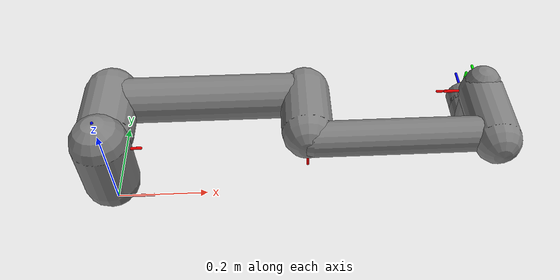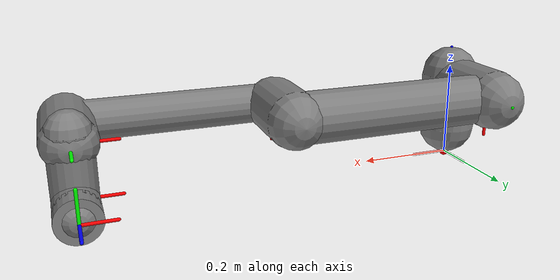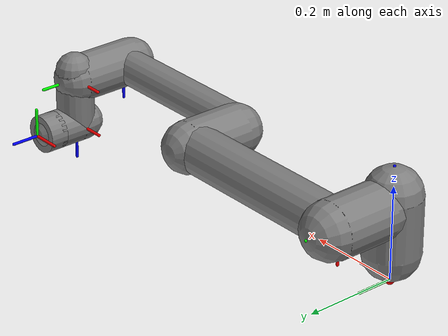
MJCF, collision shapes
<mujoco model="ur5e">
  <compiler angle="radian" meshdir="assets" autolimits="true"/>
  <option integrator="implicitfast"/>
  <default>
    <default class="ur5e">
      <material specular="0.5" shininess="0.25"/>
      <joint axis="0 1 0" range="-6.28319 6.28319" armature="0.1"/>
      <general gaintype="fixed" biastype="affine" ctrlrange="-6.2831 6.2831"
        gainprm="2000" biasprm="0 -2000 -400" forcerange="-150 150"/>
      <default class="size3">
        <default class="size3_limited">
          <joint range="-6.28319 6.28319"/>
          <general ctrlrange="-6.28319 6.28319"/>
        </default>
      </default>
      <default class="size1">
        <general gainprm="500" biasprm="0 -500 -100" forcerange="-28 28"/>
      </default>
      <default class="visual">
        <geom type="mesh" contype="0" conaffinity="0" group="2"/>
      </default>
      <default class="collision">
        <geom type="capsule" group="3"/>
        <default class="eef_collision">
          <geom type="cylinder"/>
        </default>
      </default>
      <site size="0.001" rgba="0.5 0.5 0.5 0.3" group="4"/>
    </default>
  </default>

  <asset>
    <material class="ur5e" name="black" rgba="0.033 0.033 0.033 1"/>
    <material class="ur5e" name="jointgray" rgba="0.278 0.278 0.278 1"/>
    <material class="ur5e" name="linkgray" rgba="0.72 0.72 0.72 1"/>
    <material class="ur5e" name="urblue" rgba="0.49 0.678 0.8 1"/>

    <mesh file="base_0.obj"/>
    <mesh file="base_1.obj"/>
    <mesh file="shoulder_0.obj"/>
    <mesh file="shoulder_1.obj"/>
    <mesh file="shoulder_2.obj"/>
    <mesh file="upperarm_0.obj"/>
    <mesh file="upperarm_1.obj"/>
    <mesh file="upperarm_2.obj"/>
    <mesh file="upperarm_3.obj"/>
    <mesh file="forearm_0.obj"/>
    <mesh file="forearm_1.obj"/>
    <mesh file="forearm_2.obj"/>
    <mesh file="forearm_3.obj"/>
    <mesh file="wrist1_0.obj"/>
    <mesh file="wrist1_1.obj"/>
    <mesh file="wrist1_2.obj"/>
    <mesh file="wrist2_0.obj"/>
    <mesh file="wrist2_1.obj"/>
    <mesh file="wrist2_2.obj"/>
    <mesh file="wrist3.obj"/>
  </asset>

  <worldbody>
    <light name="spotlight" mode="targetbodycom" target="wrist_2_link" pos="0 -1 2"/>

    <body name="base" pos="0 0 0.0" quat="1 0 0 0" childclass="ur5e">
      <inertial mass="4.0" pos="0 0 0" diaginertia="0.00443333156 0.00443333156 0.0072"/>
      <geom type="capsule" fromto="0 0 0 0.08 0 0" rgba="1 0 0 1" size="0.003" contype="0" conaffinity="0"/>
      <geom type="capsule" fromto="0 0 0 0 0.08 0" rgba="0 1 0 1" size="0.003" contype="0" conaffinity="0"/>
      <geom type="capsule" fromto="0 0 0 0 0 0.08" rgba="0 0 1 1" size="0.003" contype="0" conaffinity="0"/>
      <geom mesh="base_0" material="black" class="visual"/>
      <geom mesh="base_1" material="linkgray" class="visual"/>

      <!-- COM marker -->
      <geom name="base_com"
            type="sphere"
            pos="0.0 0.0 0.0"
            size="0.01"
            rgba="1 0 0 1"
            group="1"
            contype="0"
            conaffinity="0"/>

      <body name="shoulder_link" pos="0 0 0.163">
        <inertial mass="3.761" pos="0 0.00193 -0.02561" diaginertia="0.0067 0.0064 0.00666"/>
        <geom type="capsule" fromto="0 0 0 0.08 0 0" rgba="1 0 0 1" size="0.003" contype="0" conaffinity="0"/>
        <geom type="capsule" fromto="0 0 0 0 0.08 0" rgba="0 1 0 1" size="0.003" contype="0" conaffinity="0"/>
        <geom type="capsule" fromto="0 0 0 0 0 0.08" rgba="0 0 1 1" size="0.003" contype="0" conaffinity="0"/>
        <joint name="shoulder_pan_joint" class="size3" axis="0 0 1"/>
        <geom mesh="shoulder_0" material="urblue" class="visual"/>
        <geom mesh="shoulder_1" material="black" class="visual"/>
        <geom mesh="shoulder_2" material="jointgray" class="visual"/>
        <geom name="shoulder_collision" class="collision" size="0.06 0.06" pos="0 0 -0.04"/>

        <!-- COM marker -->
        <geom name="shoulder_link_com"
              type="sphere"
              pos="0.0 0.00193 -0.02561"
              size="0.01"
              rgba="1 0 0 1"
              group="1"
              contype="0"
              conaffinity="0"/>

        <body name="upper_arm_link" pos="0 0.138 0" quat="1 0 1 0">
          <inertial mass="8.058" pos="0.0 -0.01464 0.2125" diaginertia="0.0149 0.3564 0.3553"/>
          <geom type="capsule" fromto="0 0 0 0.08 0 0" rgba="1 0 0 1" size="0.003" contype="0" conaffinity="0"/>
          <geom type="capsule" fromto="0 0 0 0 0.08 0" rgba="0 1 0 1" size="0.003" contype="0" conaffinity="0"/>
          <geom type="capsule" fromto="0 0 0 0 0 0.08" rgba="0 0 1 1" size="0.003" contype="0" conaffinity="0"/>
          <joint name="shoulder_lift_joint" class="size3"/>
          <geom mesh="upperarm_0" material="linkgray" class="visual"/>
          <geom mesh="upperarm_1" material="black" class="visual"/>
          <geom mesh="upperarm_2" material="jointgray" class="visual"/>
          <geom mesh="upperarm_3" material="urblue" class="visual"/>
          <geom name="upper_arm_collision_outer" class="collision" pos="0 -0.04 0" quat="1 1 0 0" size="0.06 0.06"/>
          <geom name="upper_arm_collision_inner" class="collision" size="0.05 0.2" pos="0 0 0.2"/>

          <!-- COM marker -->
          <geom name="upper_arm_com"
                type="sphere"
                pos="0.0 -0.01464 0.2125"
                size="0.01"
                rgba="1 0 0 1"
                group="1"
                contype="0"
                conaffinity="0"/>

          <body name="forearm_link" pos="0 -0.131 0.425">
            <inertial mass="2.846" pos="0.0 0.0155 0.1922" diaginertia="0.0025 0.0551 0.0546"/>
            <geom type="capsule" fromto="0 0 0 0.08 0 0" rgba="1 0 0 1" size="0.003" contype="0" conaffinity="0"/>
            <geom type="capsule" fromto="0 0 0 0 0.08 0" rgba="0 1 0 1" size="0.003" contype="0" conaffinity="0"/>
            <geom type="capsule" fromto="0 0 0 0 0 0.08" rgba="0 0 1 1" size="0.003" contype="0" conaffinity="0"/>
            <joint name="elbow_joint" class="size3_limited"/>
            <geom mesh="forearm_0" material="urblue" class="visual"/>
            <geom mesh="forearm_1" material="linkgray" class="visual"/>
            <geom mesh="forearm_2" material="black" class="visual"/>
            <geom mesh="forearm_3" material="jointgray" class="visual"/>
            <geom name="forearm_collision_outer" class="collision" pos="0 0.08 0" quat="1 1 0 0" size="0.055 0.06"/>
            <geom name="forearm_collision_inner" class="collision" size="0.038 0.19" pos="0 0 0.2"/>

            <!-- COM marker -->
            <geom name="forearm_com"
                  type="sphere"
                  pos="0.0 0.0155 0.1922"
                  size="0.01"
                  rgba="1 0 0 1"
                  group="1"
                  contype="0"
                  conaffinity="0"/>

            <body name="wrist_1_link" pos="0 0 0.392" quat="1 0 1 0">
              <inertial mass="1.37" pos="0.0 0.11 0.03" diaginertia="0.0012 0.0012 0.0009"/>
              <geom type="capsule" fromto="0 0 0 0.08 0 0" rgba="1 0 0 1" size="0.003" contype="0" conaffinity="0"/>
              <geom type="capsule" fromto="0 0 0 0 0.08 0" rgba="0 1 0 1" size="0.003" contype="0" conaffinity="0"/>
              <geom type="capsule" fromto="0 0 0 0 0 0.08" rgba="0 0 1 1" size="0.003" contype="0" conaffinity="0"/>
              <joint name="wrist_1_joint" class="size1"/>
              <geom mesh="wrist1_0" material="black" class="visual"/>
              <geom mesh="wrist1_1" material="urblue" class="visual"/>
              <geom mesh="wrist1_2" material="jointgray" class="visual"/>
              <geom name="wrist_1_collision" class="collision" pos="0 0.05 0" quat="1 1 0 0" size="0.05 0.07"/>

              <!-- COM marker -->
              <geom name="wrist_1_com"
                    type="sphere"
                    pos="0.0 0.11 0.03"
                    size="0.01"
                    rgba="1 0 0 1"
                    group="1"
                    contype="0"
                    conaffinity="0"/>

              <body name="wrist_2_link" pos="0 0.127 0">
                <inertial mass="1.3" pos="0.0 0.02 0.09" diaginertia="0.0012 0.0012 0.0009"/>
                <geom type="capsule" fromto="0 0 0 0.08 0 0" rgba="1 0 0 1" size="0.003" contype="0" conaffinity="0"/>
                <geom type="capsule" fromto="0 0 0 0 0.08 0" rgba="0 1 0 1" size="0.003" contype="0" conaffinity="0"/>
                <geom type="capsule" fromto="0 0 0 0 0 0.08" rgba="0 0 1 1" size="0.003" contype="0" conaffinity="0"/>
                <joint name="wrist_2_joint" axis="0 0 1" class="size1"/>
                <geom mesh="wrist2_0" material="black" class="visual"/>
                <geom mesh="wrist2_1" material="urblue" class="visual"/>
                <geom mesh="wrist2_2" material="jointgray" class="visual"/>
                <geom name="wrist_2_collision_lower" class="collision" size="0.04 0.06" pos="0 0 0.04"/>
                <geom name="wrist_2_collision_upper" class="collision" pos="0 0.02 0.1" quat="1 1 0 0" size="0.04 0.04"/>

                <!-- COM marker -->
                <geom name="wrist_2_com"
                      type="sphere"
                      pos="0.0 0.02 0.09"
                      size="0.01"
                      rgba="1 0 0 1"
                      group="1"
                      contype="0"
                      conaffinity="0"/>

                <body name="wrist_3_link" pos="0 0 0.1">
                  <inertial mass="0.365" pos="0.0 0.07 0.0" quat="1 0 0 1" diaginertia="0.001 0.001 0.001"/>
                  <geom type="capsule" fromto="0 0 0 0.08 0 0" rgba="1 0 0 1" size="0.003" contype="0" conaffinity="0"/>
                  <geom type="capsule" fromto="0 0 0 0 0.08 0" rgba="0 1 0 1" size="0.003" contype="0" conaffinity="0"/>
                  <geom type="capsule" fromto="0 0 0 0 0 0.08" rgba="0 0 1 1" size="0.003" contype="0" conaffinity="0"/>
                  <joint name="wrist_3_joint" class="size1"/>
                  <geom material="linkgray" mesh="wrist3" class="visual"/>
                  <geom name="wrist_3_collision" class="eef_collision" pos="0 0.07 0" quat="1 1 0 0" size="0.04 0.02"/>

                  <!-- COM marker -->
                  <geom name="wrist_3_com"
                        type="sphere"
                        pos="0.0 0.07 0.0"
                        size="0.01"
                        rgba="1 0 0 1"
                        group="1"
                        contype="0"
                        conaffinity="0"/>

                  <site name="ee_site" pos="0 0.1 0" quat="0.7071 -0.7071 0 0"/>

                  <!-- Replace tool frames with Hande gripper -->
                  <body name="ee_frame_visual_only" pos="0 0.1 0" quat="0.7071 -0.7071 0 0">
                    <geom type="capsule" fromto="0 0 0 0.05 0 0" rgba="1 0 0 1" size="0.002"/>
                    <geom type="capsule" fromto="0 0 0 0 0.05 0" rgba="0 1 0 1" size="0.002"/>
                    <geom type="capsule" fromto="0 0 0 0 0 0.05" rgba="0 0 1 1" size="0.002"/>

                    <!-- 'Movable frame' inside the gripper fingers -->
                    <body name="tool_frame" pos="0 0 0.0" quat="1 0 0 0">
                      <site name="tool_site" pos="0 0.0 0.0" quat="1 0 0 0"/>
                      <geom type="capsule" fromto="0 0 0 0.06 0 0" rgba="1 0 0 1" size="0.003" contype="0" conaffinity="0"/>
                      <geom type="capsule" fromto="0 0 0 0 0.06 0" rgba="0 1 0 1" size="0.003" contype="0" conaffinity="0"/>
                      <geom type="capsule" fromto="0 0 0 0 0 0.06" rgba="0 0 1 1" size="0.003" contype="0" conaffinity="0"/>
                    </body>
                  </body>
                </body>
              </body>
            </body>
          </body>
        </body>
      </body>
    </body>
  </worldbody>

  <actuator>
    <motor joint="shoulder_pan_joint" gear="1"/>
    <motor joint="shoulder_lift_joint" gear="1"/>
    <motor joint="elbow_joint" gear="1"/>
    <motor joint="wrist_1_joint" gear="1"/>
    <motor joint="wrist_2_joint" gear="1"/>
    <motor joint="wrist_3_joint" gear="1"/>
  </actuator>

  <keyframe>
    <key name="home" qpos="-1.5708 -1.5708 1.5708 -1.5708 -1.5708 0"
         ctrl="-1.5708 -1.5708 1.5708 -1.5708 -1.5708 0"/>
  </keyframe>
</mujoco>
